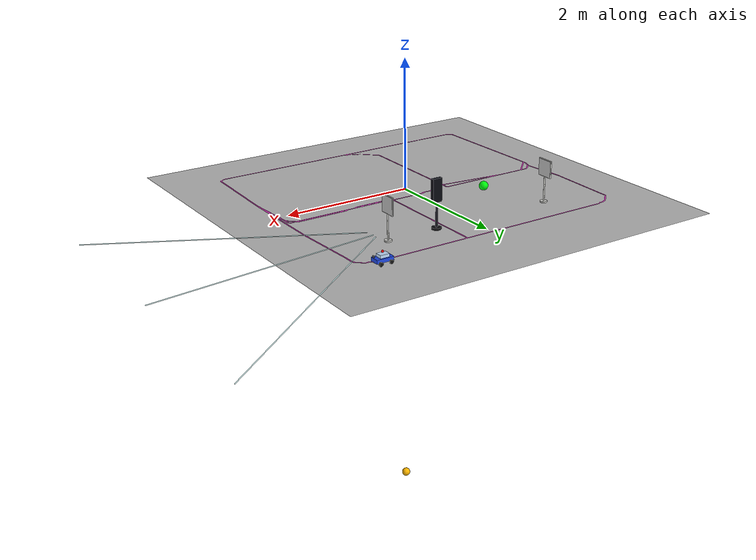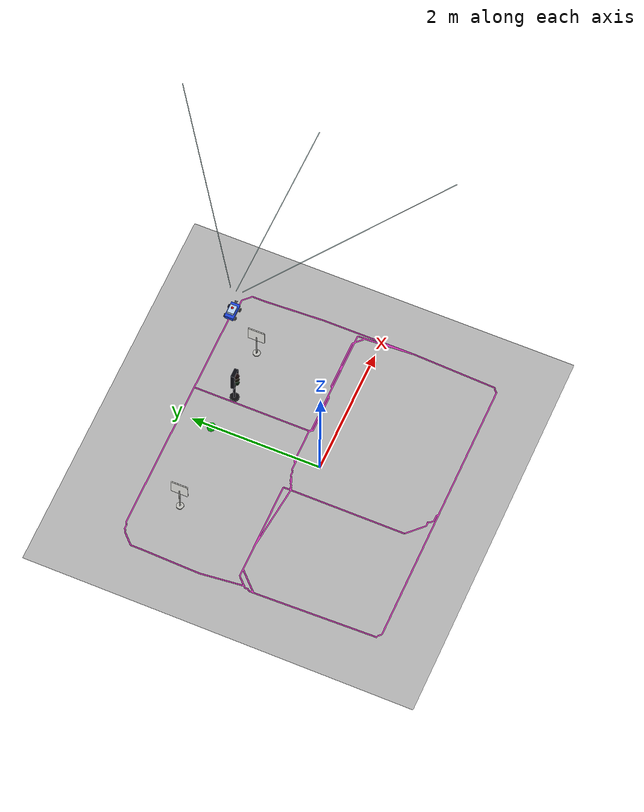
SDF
<sdf version="1.7">
 <world name="autonomous_map_3d_world">
  <model name="autonomous_map_3d">
   <static>1</static>
   <link name="map_link">
    <visual name="textured_map_visual">
     <geometry>
      <mesh><uri>model://autonomous_map_3d/meshes/autonomous_map_3d.dae</uri><scale>-1.0 1.0 1.0</scale></mesh>
     </geometry>
    </visual>
    <collision name="floor_collision">
     <pose>0 0 -0.01 0 -0 0</pose>
     <geometry><box><size>6 6 0.02</size></box></geometry>
    </collision>
   </link>
   <pose>0 0.3 0 0 -0 0</pose>
  </model>
  <model name="traffic_light_top_island">
   <static>1</static>
   <link name="traffic_light_link">
    <visual name="base_visual">
     <pose>0 0 0.015 0 -0 0</pose>
     <geometry><cylinder><radius>0.07</radius><length>0.03</length></cylinder></geometry>
     <material><ambient>0.03 0.03 0.04 1</ambient><diffuse>0.04 0.04 0.05 1</diffuse></material>
    </visual>
    <visual name="pole_visual">
     <pose>0 0 0.25 0 -0 0</pose>
     <geometry><cylinder><radius>0.016</radius><length>0.47</length></cylinder></geometry>
     <material><ambient>0.08 0.08 0.1 1</ambient><diffuse>0.1 0.1 0.13 1</diffuse></material>
    </visual>
    <visual name="housing_visual">
     <pose>0 -0.006 0.565 0 -0 0</pose>
     <geometry><box><size>0.145 0.055 0.34</size></box></geometry>
     <material><ambient>0.02 0.025 0.04 1</ambient><diffuse>0.03 0.035 0.06 1</diffuse></material>
    </visual>
    <visual name="red_lens_visual">
     <pose>0 -0.038 0.66 0 -0 0</pose>
     <geometry><sphere><radius>0.043</radius></sphere></geometry>
     <material>
      <ambient>0.035 0.002 0.002 1</ambient>
      <diffuse>0.06 0.004 0.004 1</diffuse>
      <emissive>0 0 0 1</emissive>
     </material>
    </visual>
    <visual name="yellow_lens_visual">
     <pose>0 -0.038 0.565 0 -0 0</pose>
     <geometry><sphere><radius>0.043</radius></sphere></geometry>
     <material>
      <ambient>0.035 0.025 0.002 1</ambient>
      <diffuse>0.06 0.045 0.004 1</diffuse>
      <emissive>0 0 0 1</emissive>
     </material>
    </visual>
    <visual name="green_lens_visual">
     <pose>0 -0.038 0.47 0 -0 0</pose>
     <geometry><sphere><radius>0.043</radius></sphere></geometry>
     <material>
      <ambient>0.002 0.04 0.004 1</ambient>
      <diffuse>0.004 0.078 0.01 1</diffuse>
      <emissive>0 0 0 1</emissive>
     </material>
    </visual>
   </link>
   <pose>0.562500 1.589100 0.000000 0.000000 -0.000000 -0.000003</pose>
  </model>
  <model name="traffic_light_top_island_green_active_lamp">
   <static>0</static>
   <link name="lamp_link">
    <gravity>0</gravity>
    <visual name="lamp_visual">
     <geometry><sphere><radius>0.065</radius></sphere></geometry>
     <material>
      <ambient>0 1 0.05 1</ambient>
      <diffuse>0 1 0.05 1</diffuse>
      <emissive>0 0.0313726 0.3 1</emissive>
     </material>
    </visual>
    <kinematic>1</kinematic>
    <inertial>
     <inertia><ixx>1</ixx><ixy>0</ixy><ixz>0</ixz><iyy>1</iyy><iyz>0</iyz><izz>1</izz></inertia>
     <mass>1</mass>
    </inertial>
   </link>
   <pose>-0.241400 1.589700 0.470000 0.000000 -0.000000 3.141593</pose>
  </model>
  <model name="traffic_light_lower_island_yellow_active_lamp">
   <static>0</static>
   <link name="lamp_link">
    <gravity>0</gravity>
    <visual name="lamp_visual">
     <geometry><sphere><radius>0.065</radius></sphere></geometry>
     <material>
      <ambient>1 0.72 0 1</ambient>
      <diffuse>1 0.72 0 1</diffuse>
      <emissive>0.0313726 0.0203922 0 1</emissive>
     </material>
    </visual>
    <kinematic>1</kinematic>
    <inertial>
     <inertia><ixx>1</ixx><ixy>0</ixy><ixz>0</ixz><iyy>1</iyy><iyz>0</iyz><izz>1</izz></inertia>
     <mass>1</mass>
    </inertial>
   </link>
   <pose>-0.000000 0.000000 -5.000000 0.000000 -0.000000 3.141593</pose>
  </model>
  <model name="sign_go_straight_top_island">
   <static>1</static>
   <link name="sign_link">
    <visual name="base_visual">
     <pose>0 0 0.01 0 -0 0</pose>
     <geometry><cylinder><radius>0.055</radius><length>0.02</length></cylinder></geometry>
     <material><ambient>0.72 0.72 0.7 1</ambient><diffuse>0.78 0.78 0.76 1</diffuse></material>
    </visual>
    <visual name="pole_visual">
     <pose>0 0 0.245 0 -0 0</pose>
     <geometry><cylinder><radius>0.011</radius><length>0.47</length></cylinder></geometry>
     <material><ambient>0.72 0.72 0.7 1</ambient><diffuse>0.82 0.82 0.8 1</diffuse></material>
    </visual>
    <visual name="back_plate_visual">
     <pose>0 0 0.52 0 -0 0</pose>
     <geometry><box><size>0.26 0.014 0.26</size></box></geometry>
     <material><ambient>0.96 0.96 0.94 1</ambient><diffuse>0.98 0.98 0.96 1</diffuse></material>
    </visual>
    <visual name="sign_face_visual">
     <pose>0 -0.011 0.52 0 -0 0</pose>
     <geometry><box><size>0.246 0.004 0.246</size></box></geometry>
     <material>
      <script>
       <uri>model://road_sign_go_straight/materials/scripts</uri>
       <uri>model://road_sign_go_straight/materials/textures</uri>
       <name>RoadSign/GoStraight</name>
      </script>
     </material>
    </visual>
   </link>
   <pose>1.359400 1.589100 0.000000 0.000000 -0.000000 1.570793</pose>
  </model>
  <model name="sign_turn_right_top_right_island">
   <static>1</static>
   <link name="sign_link">
    <visual name="base_visual">
     <pose>0 0 0.01 0 -0 0</pose>
     <geometry><cylinder><radius>0.055</radius><length>0.02</length></cylinder></geometry>
     <material><ambient>0.72 0.72 0.7 1</ambient><diffuse>0.78 0.78 0.76 1</diffuse></material>
    </visual>
    <visual name="pole_visual">
     <pose>0 0 0.245 0 -0 0</pose>
     <geometry><cylinder><radius>0.011</radius><length>0.47</length></cylinder></geometry>
     <material><ambient>0.72 0.72 0.7 1</ambient><diffuse>0.82 0.82 0.8 1</diffuse></material>
    </visual>
    <visual name="back_plate_visual">
     <pose>0 0 0.52 0 -0 0</pose>
     <geometry><box><size>0.26 0.014 0.26</size></box></geometry>
     <material><ambient>0.96 0.96 0.94 1</ambient><diffuse>0.98 0.98 0.96 1</diffuse></material>
    </visual>
    <visual name="sign_face_visual">
     <pose>0 -0.011 0.52 0 -0 0</pose>
     <geometry><box><size>0.246 0.004 0.246</size></box></geometry>
     <material>
      <script>
       <uri>model://road_sign_turn_right/materials/scripts</uri>
       <uri>model://road_sign_turn_right/materials/textures</uri>
       <name>RoadSign/TurnRight</name>
      </script>
     </material>
    </visual>
   </link>
   <pose>-1.359400 1.589100 0.000000 0.000000 -0.000000 1.570793</pose>
  </model>
  <model name="track_preview_car">
   <static>0</static>
   <allow_auto_disable>0</allow_auto_disable>
   <link name="body">
    <inertial>
     <mass>1</mass>
     <inertia><ixx>0.01</ixx><iyy>0.01</iyy><izz>0.01</izz><ixy>0</ixy><ixz>0</ixz><iyz>0</iyz></inertia>
    </inertial>
    <visual name="chassis_visual">
     <pose>0 0 0.065 0 -0 0</pose>
     <geometry><box><size>0.26 0.14 0.055</size></box></geometry>
     <material>
      <ambient>0.08 0.2 0.7 1</ambient>
      <diffuse>0.12 0.28 0.88 1</diffuse>
      <specular>0.1 0.1 0.1 1</specular>
     </material>
    </visual>
    <visual name="roof_visual">
     <pose>-0.005 0 0.115 0 -0 0</pose>
     <geometry><box><size>0.14 0.105 0.045</size></box></geometry>
     <material>
      <ambient>0.65 0.78 0.95 0.92</ambient>
      <diffuse>0.75 0.86 0.98 0.92</diffuse>
      <specular>0.1 0.1 0.1 1</specular>
     </material>
    </visual>
    <visual name="front_marker_visual">
     <pose>0.105 0 0.083 0 -0 0</pose>
     <geometry><box><size>0.025 0.075 0.018</size></box></geometry>
     <material>
      <ambient>1 0.85 0.2 1</ambient>
      <diffuse>1 0.88 0.25 1</diffuse>
      <specular>0.05 0.05 0.05 1</specular>
     </material>
    </visual>
    <visual name="camera_lens_visual">
     <pose>0.138 0 0.126 0 -0 0</pose>
     <geometry><box><size>0.016 0.04 0.022</size></box></geometry>
     <material>
      <ambient>0.02 0.02 0.025 1</ambient>
      <diffuse>0.04 0.04 0.05 1</diffuse>
      <specular>0.05 0.05 0.05 1</specular>
     </material>
    </visual>
    <visual name="camera_view_left_ray_visual">
     <pose>1.67 1.15 0.335 -0 0.0505 0.6109</pose>
     <geometry><box><size>3.68 0.008 0.008</size></box></geometry>
     <material>
      <ambient>0.85 1 1 0.82</ambient>
      <diffuse>0.85 1 1 0.82</diffuse>
      <emissive>0.2 0.55 0.75 1</emissive>
     </material>
    </visual>
    <visual name="camera_view_center_ray_visual">
     <pose>1.67 0 0.335 0 0.0555 0</pose>
     <geometry><box><size>3.0647 0.008 0.008</size></box></geometry>
     <material>
      <ambient>0.85 1 1 0.82</ambient>
      <diffuse>0.85 1 1 0.82</diffuse>
      <emissive>0.2 0.55 0.75 1</emissive>
     </material>
    </visual>
    <visual name="camera_view_right_ray_visual">
     <pose>1.67 -1.15 0.335 0 0.0505 -0.6109</pose>
     <geometry><box><size>3.68 0.008 0.008</size></box></geometry>
     <material>
      <ambient>0.85 1 1 0.82</ambient>
      <diffuse>0.85 1 1 0.82</diffuse>
      <emissive>0.2 0.55 0.75 1</emissive>
     </material>
    </visual>
    <visual name="debug_origin_marker_visual">
     <pose>0 0 0.165 0 -0 0</pose>
     <geometry><sphere><radius>0.018</radius></sphere></geometry>
     <material>
      <ambient>1 0.02 0.02 1</ambient>
      <diffuse>1 0.04 0.04 1</diffuse>
      <specular>0.08 0.08 0.08 1</specular>
     </material>
    </visual>
    <visual name="debug_ground_origin_visual">
     <pose>0 0 -0.017 0 -0 0</pose>
     <geometry><cylinder><radius>0.018</radius><length>0.004</length></cylinder></geometry>
     <material>
      <ambient>1 0.02 0.02 1</ambient>
      <diffuse>1 0.04 0.04 1</diffuse>
      <specular>0.08 0.08 0.08 1</specular>
     </material>
    </visual>
    <visual name="debug_ground_footprint_front_visual">
     <pose>0.165 0 -0.017 0 -0 0</pose>
     <geometry><box><size>0.008 0.238 0.004</size></box></geometry>
     <material>
      <ambient>0 0.7 1 1</ambient>
      <diffuse>0.05 0.86 1 1</diffuse>
      <specular>0.02 0.02 0.02 1</specular>
     </material>
    </visual>
    <visual name="debug_ground_footprint_rear_visual">
     <pose>-0.145 0 -0.017 0 -0 0</pose>
     <geometry><box><size>0.008 0.238 0.004</size></box></geometry>
     <material>
      <ambient>0 0.7 1 1</ambient>
      <diffuse>0.05 0.86 1 1</diffuse>
      <specular>0.02 0.02 0.02 1</specular>
     </material>
    </visual>
    <visual name="debug_ground_footprint_left_visual">
     <pose>0.01 0.115 -0.017 0 -0 0</pose>
     <geometry><box><size>0.318 0.008 0.004</size></box></geometry>
     <material>
      <ambient>0 0.7 1 1</ambient>
      <diffuse>0.05 0.86 1 1</diffuse>
      <specular>0.02 0.02 0.02 1</specular>
     </material>
    </visual>
    <visual name="debug_ground_footprint_right_visual">
     <pose>0.01 -0.115 -0.017 0 -0 0</pose>
     <geometry><box><size>0.318 0.008 0.004</size></box></geometry>
     <material>
      <ambient>0 0.7 1 1</ambient>
      <diffuse>0.05 0.86 1 1</diffuse>
      <specular>0.02 0.02 0.02 1</specular>
     </material>
    </visual>
    <visual name="rear_left_dummy_wheel_visual">
     <pose>-0.08 0.085 0.032 1.5708 -0 0</pose>
     <geometry><cylinder><radius>0.028</radius><length>0.016</length></cylinder></geometry>
     <material>
      <ambient>0.03 0.03 0.03 1</ambient>
      <diffuse>0.07 0.07 0.07 1</diffuse>
      <specular>0.02 0.02 0.02 1</specular>
     </material>
    </visual>
    <visual name="rear_right_dummy_wheel_visual">
     <pose>-0.08 -0.085 0.032 1.5708 -0 0</pose>
     <geometry><cylinder><radius>0.028</radius><length>0.016</length></cylinder></geometry>
     <material>
      <ambient>0.03 0.03 0.03 1</ambient>
      <diffuse>0.07 0.07 0.07 1</diffuse>
      <specular>0.02 0.02 0.02 1</specular>
     </material>
    </visual>
    <collision name="rear_left_caster_collision">
     <pose>-0.095 0.072 0.026 0 -0 0</pose>
     <geometry><sphere><radius>0.024</radius></sphere></geometry>
     <surface><friction><ode><mu>0.05</mu><mu2>0.05</mu2></ode></friction></surface>
    </collision>
    <collision name="rear_right_caster_collision">
     <pose>-0.095 -0.072 0.026 0 -0 0</pose>
     <geometry><sphere><radius>0.024</radius></sphere></geometry>
     <surface><friction><ode><mu>0.05</mu><mu2>0.05</mu2></ode></friction></surface>
    </collision>
    <collision name="body_collision">
     <pose>0 0 0.065 0 -0 0</pose>
     <geometry><box><size>0.26 0.14 0.05</size></box></geometry>
    </collision>
    <sensor name="front_camera" type="camera">
     <pose>0.14 0 0.42 0 0.18 0</pose>
     <always_on>1</always_on>
     <update_rate>30</update_rate>
     <visualize>0</visualize>
     <camera>
      <horizontal_fov>2.45</horizontal_fov>
      <image><width>960</width><height>540</height><format>R8G8B8</format></image>
      <clip><near>0.02</near><far>6</far></clip>
     </camera>
     <plugin name="front_camera_controller" filename="libgazebo_ros_camera.so">
      <ros>
       <namespace>/track_preview_car</namespace>
       <remapping>image_raw:=image_raw</remapping>
       <remapping>camera_info:=camera_info</remapping>
      </ros>
      <camera_name>camera</camera_name>
      <frame_name>track_preview_car/front_camera</frame_name>
     </plugin>
    </sensor>
   </link>
   <link name="left_wheel">
    <pose>0.08 0.088 0.032 0 -0 0</pose>
    <inertial>
     <mass>0.08</mass>
     <inertia><ixx>5e-05</ixx><iyy>8e-05</iyy><izz>5e-05</izz><ixy>0</ixy><ixz>0</ixz><iyz>0</iyz></inertia>
    </inertial>
    <visual name="left_wheel_visual">
     <pose>0 0 0 1.5708 -0 0</pose>
     <geometry><cylinder><radius>0.03</radius><length>0.02</length></cylinder></geometry>
     <material>
      <ambient>0.03 0.03 0.03 1</ambient>
      <diffuse>0.07 0.07 0.07 1</diffuse>
      <specular>0.02 0.02 0.02 1</specular>
     </material>
    </visual>
    <collision name="left_wheel_collision">
     <pose>0 0 0 1.5708 -0 0</pose>
     <geometry><cylinder><radius>0.03</radius><length>0.02</length></cylinder></geometry>
     <surface><friction><ode><mu>1.2</mu><mu2>1.2</mu2></ode></friction></surface>
    </collision>
   </link>
   <link name="right_wheel">
    <pose>0.08 -0.088 0.032 0 -0 0</pose>
    <inertial>
     <mass>0.08</mass>
     <inertia><ixx>5e-05</ixx><iyy>8e-05</iyy><izz>5e-05</izz><ixy>0</ixy><ixz>0</ixz><iyz>0</iyz></inertia>
    </inertial>
    <visual name="right_wheel_visual">
     <pose>0 0 0 1.5708 -0 0</pose>
     <geometry><cylinder><radius>0.03</radius><length>0.02</length></cylinder></geometry>
     <material>
      <ambient>0.03 0.03 0.03 1</ambient>
      <diffuse>0.07 0.07 0.07 1</diffuse>
      <specular>0.02 0.02 0.02 1</specular>
     </material>
    </visual>
    <collision name="right_wheel_collision">
     <pose>0 0 0 1.5708 -0 0</pose>
     <geometry><cylinder><radius>0.03</radius><length>0.02</length></cylinder></geometry>
     <surface><friction><ode><mu>1.2</mu><mu2>1.2</mu2></ode></friction></surface>
    </collision>
   </link>
   <joint name="left_wheel_joint" type="revolute">
    <parent>body</parent>
    <child>left_wheel</child>
    <axis>
     <xyz>0 1 0</xyz>
     <limit><lower>-1e+16</lower><upper>1e+16</upper></limit>
     <dynamics><spring_reference>0</spring_reference><spring_stiffness>0</spring_stiffness></dynamics>
    </axis>
   </joint>
   <joint name="right_wheel_joint" type="revolute">
    <parent>body</parent>
    <child>right_wheel</child>
    <axis>
     <xyz>0 1 0</xyz>
     <limit><lower>-1e+16</lower><upper>1e+16</upper></limit>
     <dynamics><spring_reference>0</spring_reference><spring_stiffness>0</spring_stiffness></dynamics>
    </axis>
   </joint>
   <plugin name="track_preview_car_diff_drive" filename="libgazebo_ros_diff_drive.so">
    <ros>
     <namespace>/track_preview_car</namespace>
     <remapping>cmd_vel:=cmd_vel</remapping>
     <remapping>odom:=odom</remapping>
    </ros>
    <left_joint>left_wheel_joint</left_joint>
    <right_joint>right_wheel_joint</right_joint>
    <wheel_separation>0.176</wheel_separation>
    <wheel_diameter>0.06</wheel_diameter>
    <max_wheel_torque>2.0</max_wheel_torque>
    <max_wheel_acceleration>8.0</max_wheel_acceleration>
    <odometry_frame>odom</odometry_frame>
    <robot_base_frame>body</robot_base_frame>
    <publish_odom>1</publish_odom>
    <publish_odom_tf>0</publish_odom_tf>
    <publish_wheel_tf>0</publish_wheel_tf>
    <update_rate>50</update_rate>
   </plugin>
   <pose>1.828120 2.179690 -0.002000 0.000000 -0.000000 0.000003</pose>
  </model>
  <model name="route_preview_code_transform_magenta">
   <static>1</static>
   <link name="route_preview_link">
    <visual name="route_preview_mesh_visual">
     <geometry>
      <mesh>
       <uri>file:///home/quocbao/my_robot_vision_full_project/my_robot_vision/mirrored_world_lab/generated/autonomous_map_3d_mirror_x_all_planned_preview_light.route_preview_magenta.dae</uri>
      </mesh>
     </geometry>
     <material>
      <script><name>Gazebo/RoutePreviewMagenta</name></script>
      <ambient>1 0 1 1</ambient>
      <diffuse>1 0 1 1</diffuse>
      <emissive>0.7 0 0.7 1</emissive>
     </material>
    </visual>
   </link>
  </model>
 </world>
</sdf>
